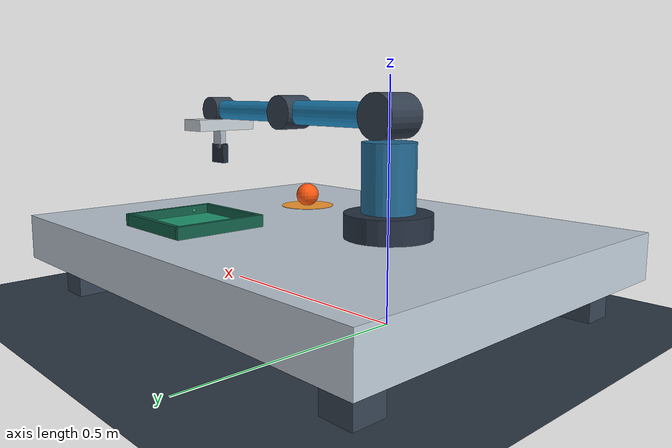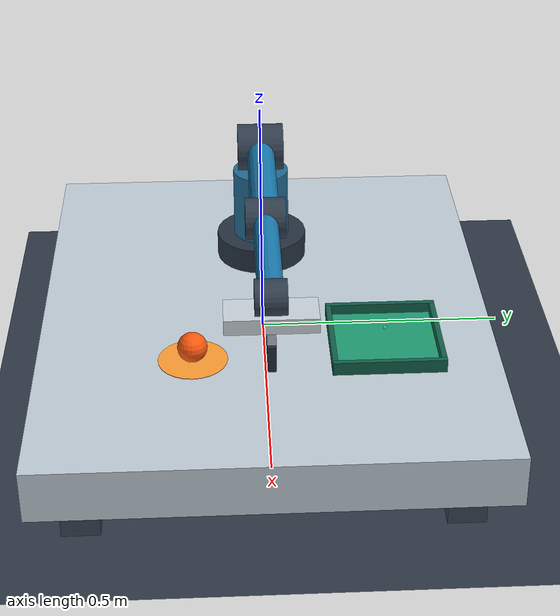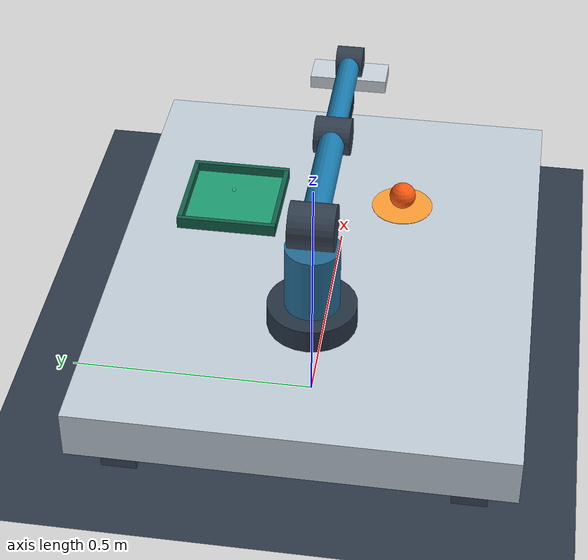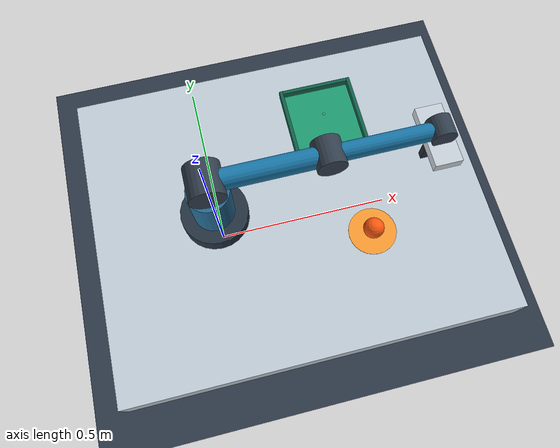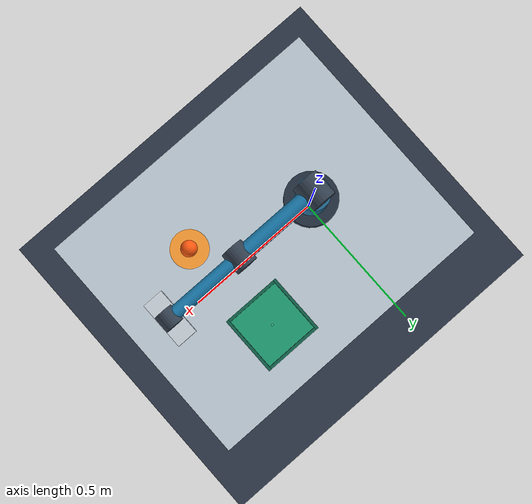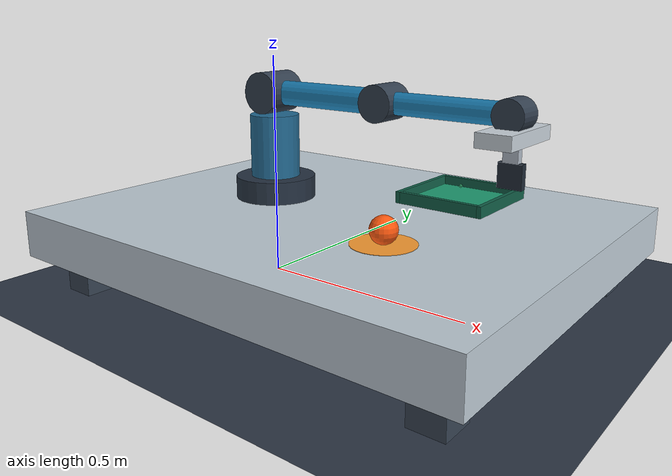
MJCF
<mujoco model="arm_ball_pick_and_place">
  <!-- SI units. Four arm joints + two independently actuated fingers. -->
  <compiler angle="radian" autolimits="true"/>
  <option timestep="0.002" gravity="0 0 -9.81" integrator="implicitfast"
          cone="elliptic" solver="Newton" iterations="80" impratio="5"/>
  <visual>
    <global offwidth="960" offheight="720"/>
    <quality shadowsize="2048"/>
    <headlight ambient="0.35 0.35 0.35" diffuse="0.7 0.7 0.7" specular="0.3 0.3 0.3"/>
    <rgba haze="0.12 0.16 0.22 1"/>
  </visual>
  <statistic center="0.23 0 0.30" extent="1.2"/>
  <default>
    <joint damping="4" armature="0.015"/>
    <geom friction="1.0 0.01 0.001" condim="4" solref="0.008 1" solimp="0.95 0.99 0.001"/>
    <default class="arm">
      <geom type="capsule" size="0.027" rgba="0.10 0.48 0.68 1"/>
    </default>
    <default class="finger">
      <joint type="slide" range="0.020 0.070" damping="3" armature="0.002"/>
      <geom type="box" size="0.024 0.008 0.024" mass="0.065" rgba="0.13 0.17 0.22 1"
            friction="1.5 0.025 0.002" condim="6" priority="1"/>
    </default>
  </default>
  <asset>
    <texture name="checker" type="2d" builtin="checker" width="512" height="512"
             rgb1="0.16 0.20 0.26" rgb2="0.20 0.24 0.30"/>
    <material name="ground" texture="checker" texrepeat="6 6" reflectance="0.1"/>
    <material name="metal" rgba="0.10 0.48 0.68 1" specular="0.5" shininess="0.65"/>
    <material name="orange" rgba="1 0.35 0.06 1" specular="0.55" shininess="0.7"/>
  </asset>
  <worldbody>
    <light pos="0 -1 2.5" dir="0 0.3 -1" diffuse="0.8 0.8 0.8"/>
    <light pos="1 1 2" dir="-0.3 -0.3 -1" diffuse="0.5 0.5 0.5" castshadow="false"/>
    <camera name="overview" pos="1.30 -1.50 1.13" xyaxes="0.817 0.576 0 -0.247 0.350 0.904"/>
    <geom name="floor" type="plane" size="2 2 0.05" material="ground"/>
    <geom name="table" type="box" pos="0.20 0 0.13" size="0.53 0.43 0.05" rgba="0.76 0.81 0.85 1"/>
    <geom type="box" pos="-0.24 -0.34 0.04" size="0.035 0.035 0.04" rgba="0.22 0.27 0.33 1"/>
    <geom type="box" pos="0.64 -0.34 0.04" size="0.035 0.035 0.04" rgba="0.22 0.27 0.33 1"/>
    <geom type="box" pos="-0.24 0.34 0.04" size="0.035 0.035 0.04" rgba="0.22 0.27 0.33 1"/>
    <geom type="box" pos="0.64 0.34 0.04" size="0.035 0.035 0.04" rgba="0.22 0.27 0.33 1"/>
    <!-- Sites provide non-colliding visual markers and configurable target positions. -->
    <site name="pick_marker" type="cylinder" pos="0.40 -0.14 0.181" size="0.065 0.0005" rgba="1 0.62 0.2 1"/>
    <body name="tray" pos="0.36 0.22 0.18">
      <geom name="tray_floor" type="box" pos="0 0 0.003" size="0.10 0.10 0.003" rgba="0.12 0.62 0.45 1"/>
      <geom type="box" pos="0.10 0 0.013" size="0.005 0.105 0.013" rgba="0.07 0.38 0.29 1"/>
      <geom type="box" pos="-0.10 0 0.013" size="0.005 0.105 0.013" rgba="0.07 0.38 0.29 1"/>
      <geom type="box" pos="0 0.10 0.013" size="0.095 0.005 0.013" rgba="0.07 0.38 0.29 1"/>
      <geom type="box" pos="0 -0.10 0.013" size="0.095 0.005 0.013" rgba="0.07 0.38 0.29 1"/>
      <site name="place_target" pos="0 0 0.034" size="0.004" rgba="0.4 1 0.65 0.4"/>
    </body>
    <body name="base" pos="0 0 0.18">
      <geom type="cylinder" pos="0 0 0.025" size="0.09 0.025" rgba="0.15 0.20 0.26 1"/>
      <body name="turret" pos="0 0 0.05" gravcomp="1">
        <joint name="yaw" type="hinge" axis="0 0 1" range="-2.8 2.8"/>
        <geom type="cylinder" pos="0 0 0.07" size="0.055 0.07" mass="1.4" rgba="0.14 0.42 0.58 1"/>
        <body name="upper_arm" pos="0 0 0.19" gravcomp="1">
          <joint name="shoulder" type="hinge" axis="0 1 0" range="-2.4 1.3"/>
          <geom type="cylinder" size="0.046 0.045" quat="0.707107 0.707107 0 0" mass="0.25" rgba="0.20 0.25 0.31 1"/>
          <geom class="arm" fromto="0 0 0 0.30 0 0" mass="0.85" material="metal"/>
          <body name="forearm" pos="0.30 0 0" gravcomp="1">
            <joint name="elbow" type="hinge" axis="0 1 0" range="0.05 2.7"/>
            <geom type="cylinder" size="0.038 0.037" quat="0.707107 0.707107 0 0" mass="0.16" rgba="0.20 0.25 0.31 1"/>
            <geom class="arm" fromto="0 0 0 0.28 0 0" size="0.023" mass="0.6" material="metal"/>
            <body name="hand" pos="0.28 0 0" gravcomp="1">
              <joint name="wrist" type="hinge" axis="0 1 0" range="-2.7 2.7" damping="2"/>
              <geom type="cylinder" size="0.032 0.028" quat="0.707107 0.707107 0 0" mass="0.12" rgba="0.20 0.25 0.31 1"/>
              <geom name="palm" type="box" pos="0 0 -0.037" size="0.035 0.081 0.014" mass="0.16" rgba="0.80 0.84 0.87 1"/>
              <site name="grip_center" pos="0 0 -0.11" size="0.004" rgba="1 0.3 0.1 0"/>
              <body name="left_finger" pos="0 0 -0.11" gravcomp="1">
                <joint name="finger_left" class="finger" axis="0 1 0"/>
                <geom name="left_pad" class="finger"/>
                <geom type="box" pos="0 0 0.037" size="0.015 0.008 0.022" mass="0.025" rgba="0.70 0.74 0.79 1"/>
              </body>
              <body name="right_finger" pos="0 0 -0.11" gravcomp="1">
                <joint name="finger_right" class="finger" axis="0 -1 0"/>
                <geom name="right_pad" class="finger"/>
                <geom type="box" pos="0 0 0.037" size="0.015 0.008 0.022" mass="0.025" rgba="0.70 0.74 0.79 1"/>
              </body>
            </body>
          </body>
        </body>
      </body>
    </body>
    <body name="ball" pos="0.40 -0.14 0.208">
      <freejoint name="ball_free"/>
      <geom name="ball_geom" type="sphere" size="0.028" mass="0.045" material="orange" condim="6"/>
    </body>
  </worldbody>
  <contact>
    <!-- The wrist housing and forearm overlap at their shared mechanical joint. -->
    <exclude body1="forearm" body2="left_finger"/>
    <exclude body1="forearm" body2="right_finger"/>
  </contact>
  <actuator>
    <position name="yaw_servo" joint="yaw" kp="600" kv="50" ctrlrange="-2.8 2.8" forcerange="-100 100"/>
    <position name="shoulder_servo" joint="shoulder" kp="900" kv="65" ctrlrange="-2.4 1.3" forcerange="-120 120"/>
    <position name="elbow_servo" joint="elbow" kp="700" kv="50" ctrlrange="0.05 2.7" forcerange="-100 100"/>
    <position name="wrist_servo" joint="wrist" kp="400" kv="25" ctrlrange="-2.7 2.7" forcerange="-40 40"/>
    <position name="left_servo" joint="finger_left" kp="500" kv="8" ctrlrange="0.020 0.070" forcerange="-12 12"/>
    <position name="right_servo" joint="finger_right" kp="500" kv="8" ctrlrange="0.020 0.070" forcerange="-12 12"/>
  </actuator>
</mujoco>
